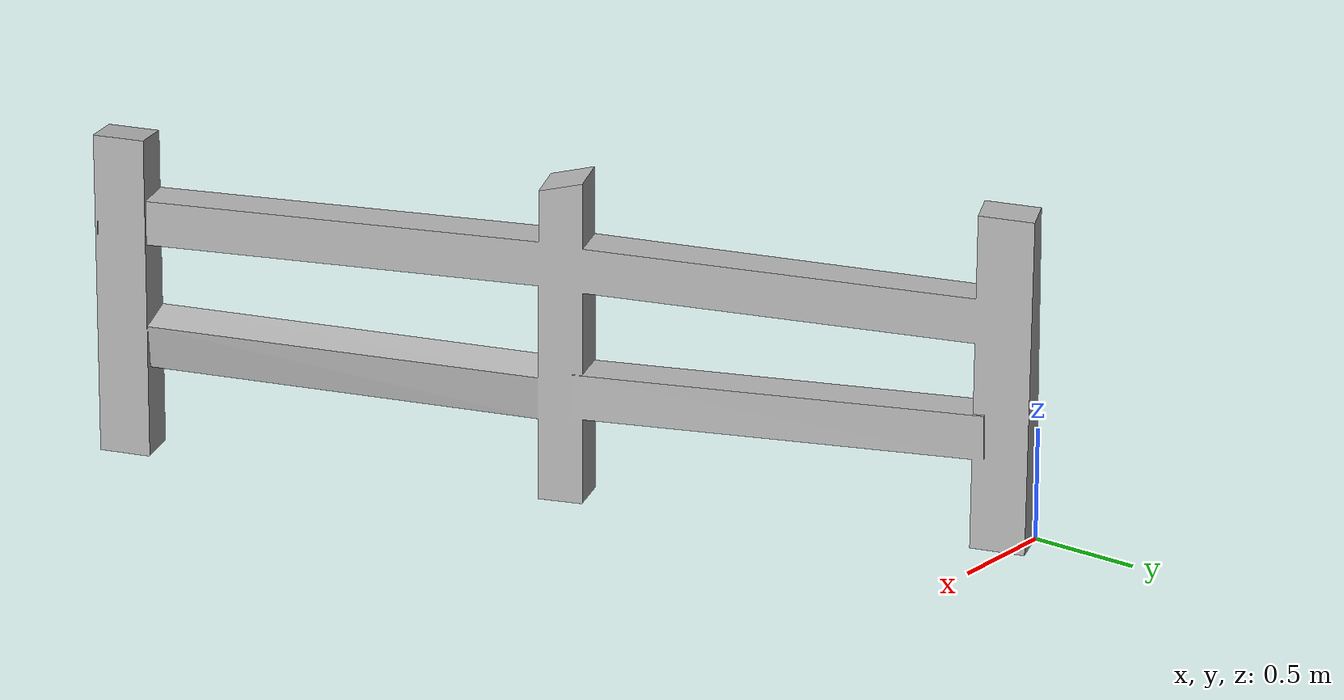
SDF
<?xml version="1.0" ?>
<sdf version="1.6">
  <model name="fence">
  <pose>0 0 0 0 0 0</pose>
  <static>true</static>
    <link name="fence">
      <pose>0 0 0 0 0 0</pose>
      <visual name="fence_visual">
        <geometry><mesh><uri>model://fence/meshes/fence.dae</uri></mesh></geometry>
        </visual>
      <collision name="fence_collision">
        <geometry><mesh><uri>model://fence/meshes/fence.dae</uri></mesh></geometry>
      </collision>
      </link>

  </model>
</sdf>
